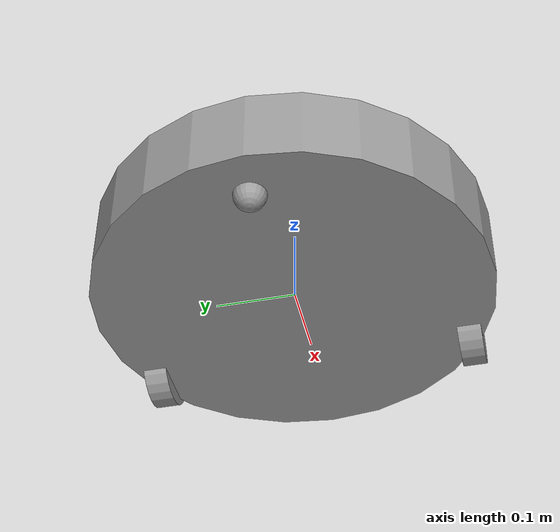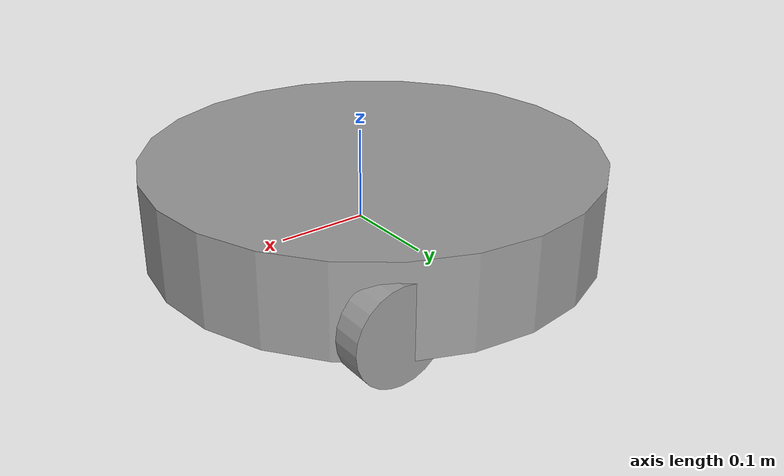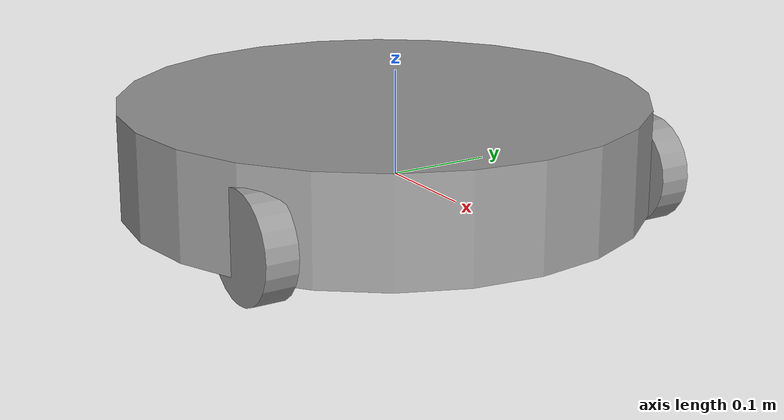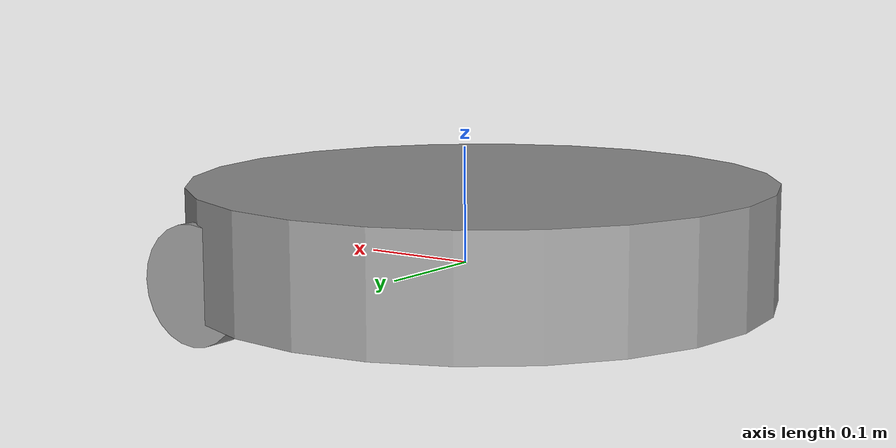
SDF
<?xml version='1.0'?>
<sdf version='1.7'>
  <model name='VacuumRobot'>
    <link name='link_0'>
      <inertial>
        <mass>0.604268</mass>
        <inertia>
          <ixx>0.0770601</ixx>
          <ixy>0</ixy>
          <ixz>0</ixz>
          <iyy>0.0770601</iyy>
          <iyz>0</iyz>
          <izz>0.144007</izz>
        </inertia>
        <pose>0 0 0 0 -0 0</pose>
      </inertial>
      <pose>-0.0175 -0.001845 0.0225 0 -0 0</pose>
      <gravity>1</gravity>
      <self_collide>0</self_collide>
      <kinematic>0</kinematic>
      <enable_wind>0</enable_wind>
      <visual name='visual'>
        <pose>0 0 0 0 -0 0</pose>
        <geometry>
          <cylinder>
            <radius>0.25</radius>
            <length>0.1</length>
          </cylinder>
        </geometry>
        <material>
          <lighting>1</lighting>
          <script>
            <uri>file://media/materials/scripts/gazebo.material</uri>
            <name>Gazebo/Grey</name>
          </script>
          <shader type='pixel'>
            <normal_map>__default__</normal_map>
          </shader>
          <ambient>0.3 0.3 0.3 1</ambient>
          <diffuse>0.7 0.7 0.7 1</diffuse>
          <specular>0.01 0.01 0.01 1</specular>
          <emissive>0 0 0 1</emissive>
        </material>
        <transparency>0</transparency>
        <cast_shadows>1</cast_shadows>
      </visual>
      <collision name='collision'>
        <laser_retro>0</laser_retro>
        <max_contacts>10</max_contacts>
        <pose>0 0 0 0 -0 0</pose>
        <geometry>
          <cylinder>
            <radius>0.25</radius>
            <length>0.1</length>
          </cylinder>
        </geometry>
        <surface>
          <friction>
            <ode>
              <mu>1</mu>
              <mu2>1</mu2>
              <fdir1>0 0 0</fdir1>
              <slip1>0</slip1>
              <slip2>0</slip2>
            </ode>
            <torsional>
              <coefficient>1</coefficient>
              <patch_radius>0</patch_radius>
              <surface_radius>0</surface_radius>
              <use_patch_radius>1</use_patch_radius>
              <ode>
                <slip>0</slip>
              </ode>
            </torsional>
          </friction>
          <bounce>
            <restitution_coefficient>0</restitution_coefficient>
            <threshold>1e+06</threshold>
          </bounce>
          <contact>
            <collide_without_contact>0</collide_without_contact>
            <collide_without_contact_bitmask>1</collide_without_contact_bitmask>
            <collide_bitmask>1</collide_bitmask>
            <ode>
              <soft_cfm>0</soft_cfm>
              <soft_erp>0.2</soft_erp>
              <kp>1e+13</kp>
              <kd>1</kd>
              <max_vel>0.01</max_vel>
              <min_depth>0</min_depth>
            </ode>
            <bullet>
              <split_impulse>1</split_impulse>
              <split_impulse_penetration_threshold>-0.01</split_impulse_penetration_threshold>
              <soft_cfm>0</soft_cfm>
              <soft_erp>0.2</soft_erp>
              <kp>1e+13</kp>
              <kd>1</kd>
            </bullet>
          </contact>
        </surface>
      </collision>
    </link>
    <link name='link_1_clone'>
      <inertial>
        <mass>1</mass>
        <inertia>
          <ixx>0.145833</ixx>
          <ixy>0</ixy>
          <ixz>0</ixz>
          <iyy>0.145833</iyy>
          <iyz>0</iyz>
          <izz>0.125</izz>
        </inertia>
        <pose>0 0 0 0 -0 0</pose>
      </inertial>
      <pose>0.1125 -0.206835 0.0025 1.5707 -0 0</pose>
      <gravity>1</gravity>
      <self_collide>0</self_collide>
      <kinematic>0</kinematic>
      <enable_wind>0</enable_wind>
      <visual name='visual'>
        <pose>0 0 0 0 -0 0</pose>
        <geometry>
          <cylinder>
            <radius>0.05</radius>
            <length>0.03</length>
          </cylinder>
        </geometry>
        <material>
          <lighting>1</lighting>
          <script>
            <uri>file://media/materials/scripts/gazebo.material</uri>
            <name>Gazebo/Grey</name>
          </script>
          <shader type='pixel'>
            <normal_map>__default__</normal_map>
          </shader>
          <ambient>0.3 0.3 0.3 1</ambient>
          <diffuse>0.7 0.7 0.7 1</diffuse>
          <specular>0.01 0.01 0.01 1</specular>
          <emissive>0 0 0 1</emissive>
        </material>
        <transparency>0</transparency>
        <cast_shadows>1</cast_shadows>
      </visual>
      <collision name='collision'>
        <laser_retro>0</laser_retro>
        <max_contacts>10</max_contacts>
        <pose>0 0 0 0 -0 0</pose>
        <geometry>
          <cylinder>
            <radius>0.05</radius>
            <length>0.03</length>
          </cylinder>
        </geometry>
        <surface>
          <friction>
            <ode>
              <mu>1</mu>
              <mu2>1</mu2>
              <fdir1>0 0 0</fdir1>
              <slip1>0</slip1>
              <slip2>0</slip2>
            </ode>
            <torsional>
              <coefficient>1</coefficient>
              <patch_radius>0</patch_radius>
              <surface_radius>0</surface_radius>
              <use_patch_radius>1</use_patch_radius>
              <ode>
                <slip>0</slip>
              </ode>
            </torsional>
          </friction>
          <bounce>
            <restitution_coefficient>0</restitution_coefficient>
            <threshold>1e+06</threshold>
          </bounce>
          <contact>
            <collide_without_contact>0</collide_without_contact>
            <collide_without_contact_bitmask>1</collide_without_contact_bitmask>
            <collide_bitmask>1</collide_bitmask>
            <ode>
              <soft_cfm>0</soft_cfm>
              <soft_erp>0.2</soft_erp>
              <kp>1e+13</kp>
              <kd>1</kd>
              <max_vel>0.01</max_vel>
              <min_depth>0</min_depth>
            </ode>
            <bullet>
              <split_impulse>1</split_impulse>
              <split_impulse_penetration_threshold>-0.01</split_impulse_penetration_threshold>
              <soft_cfm>0</soft_cfm>
              <soft_erp>0.2</soft_erp>
              <kp>1e+13</kp>
              <kd>1</kd>
            </bullet>
          </contact>
        </surface>
      </collision>
    </link>
    <link name='link_1_clone_clone'>
      <inertial>
        <mass>1</mass>
        <inertia>
          <ixx>0.145833</ixx>
          <ixy>0</ixy>
          <ixz>0</ixz>
          <iyy>0.145833</iyy>
          <iyz>0</iyz>
          <izz>0.125</izz>
        </inertia>
        <pose>0 0 0 0 -0 0</pose>
      </inertial>
      <pose>0.1125 0.203155 0.0025 1.5707 -0 0</pose>
      <gravity>1</gravity>
      <self_collide>0</self_collide>
      <kinematic>0</kinematic>
      <enable_wind>0</enable_wind>
      <visual name='visual'>
        <pose>0 0 0 0 -0 0</pose>
        <geometry>
          <cylinder>
            <radius>0.05</radius>
            <length>0.03</length>
          </cylinder>
        </geometry>
        <material>
          <lighting>1</lighting>
          <script>
            <uri>file://media/materials/scripts/gazebo.material</uri>
            <name>Gazebo/Grey</name>
          </script>
          <shader type='pixel'>
            <normal_map>__default__</normal_map>
          </shader>
          <ambient>0.3 0.3 0.3 1</ambient>
          <diffuse>0.7 0.7 0.7 1</diffuse>
          <specular>0.01 0.01 0.01 1</specular>
          <emissive>0 0 0 1</emissive>
        </material>
        <transparency>0</transparency>
        <cast_shadows>1</cast_shadows>
      </visual>
      <collision name='collision'>
        <laser_retro>0</laser_retro>
        <max_contacts>10</max_contacts>
        <pose>0 0 0 0 -0 0</pose>
        <geometry>
          <cylinder>
            <radius>0.05</radius>
            <length>0.03</length>
          </cylinder>
        </geometry>
        <surface>
          <friction>
            <ode>
              <mu>1</mu>
              <mu2>1</mu2>
              <fdir1>0 0 0</fdir1>
              <slip1>0</slip1>
              <slip2>0</slip2>
            </ode>
            <torsional>
              <coefficient>1</coefficient>
              <patch_radius>0</patch_radius>
              <surface_radius>0</surface_radius>
              <use_patch_radius>1</use_patch_radius>
              <ode>
                <slip>0</slip>
              </ode>
            </torsional>
          </friction>
          <bounce>
            <restitution_coefficient>0</restitution_coefficient>
            <threshold>1e+06</threshold>
          </bounce>
          <contact>
            <collide_without_contact>0</collide_without_contact>
            <collide_without_contact_bitmask>1</collide_without_contact_bitmask>
            <collide_bitmask>1</collide_bitmask>
            <ode>
              <soft_cfm>0</soft_cfm>
              <soft_erp>0.2</soft_erp>
              <kp>1e+13</kp>
              <kd>1</kd>
              <max_vel>0.01</max_vel>
              <min_depth>0</min_depth>
            </ode>
            <bullet>
              <split_impulse>1</split_impulse>
              <split_impulse_penetration_threshold>-0.01</split_impulse_penetration_threshold>
              <soft_cfm>0</soft_cfm>
              <soft_erp>0.2</soft_erp>
              <kp>1e+13</kp>
              <kd>1</kd>
            </bullet>
          </contact>
        </surface>
      </collision>
    </link>
    <link name='link_2'>
      <inertial>
        <mass>1</mass>
        <inertia>
          <ixx>0.1</ixx>
          <ixy>0</ixy>
          <ixz>0</ixz>
          <iyy>0.1</iyy>
          <iyz>0</iyz>
          <izz>0.1</izz>
        </inertia>
        <pose>0 0 0 0 -0 0</pose>
      </inertial>
      <pose>-0.2075 0.005525 -0.0275 0 -0 0</pose>
      <gravity>1</gravity>
      <self_collide>0</self_collide>
      <kinematic>0</kinematic>
      <enable_wind>0</enable_wind>
      <visual name='visual'>
        <pose>0 0 0 0 -0 0</pose>
        <geometry>
          <sphere>
            <radius>0.02</radius>
          </sphere>
        </geometry>
        <material>
          <lighting>1</lighting>
          <script>
            <uri>file://media/materials/scripts/gazebo.material</uri>
            <name>Gazebo/Grey</name>
          </script>
          <shader type='pixel'>
            <normal_map>__default__</normal_map>
          </shader>
          <ambient>0.3 0.3 0.3 1</ambient>
          <diffuse>0.7 0.7 0.7 1</diffuse>
          <specular>0.01 0.01 0.01 1</specular>
          <emissive>0 0 0 1</emissive>
        </material>
        <transparency>0</transparency>
        <cast_shadows>1</cast_shadows>
      </visual>
      <collision name='collision'>
        <laser_retro>0</laser_retro>
        <max_contacts>10</max_contacts>
        <pose>0 0 0 0 -0 0</pose>
        <geometry>
          <sphere>
            <radius>0.02</radius>
          </sphere>
        </geometry>
        <surface>
          <friction>
            <ode>
              <mu>1</mu>
              <mu2>1</mu2>
              <fdir1>0 0 0</fdir1>
              <slip1>0</slip1>
              <slip2>0</slip2>
            </ode>
            <torsional>
              <coefficient>1</coefficient>
              <patch_radius>0</patch_radius>
              <surface_radius>0</surface_radius>
              <use_patch_radius>1</use_patch_radius>
              <ode>
                <slip>0</slip>
              </ode>
            </torsional>
          </friction>
          <bounce>
            <restitution_coefficient>0</restitution_coefficient>
            <threshold>1e+06</threshold>
          </bounce>
          <contact>
            <collide_without_contact>0</collide_without_contact>
            <collide_without_contact_bitmask>1</collide_without_contact_bitmask>
            <collide_bitmask>1</collide_bitmask>
            <ode>
              <soft_cfm>0</soft_cfm>
              <soft_erp>0.2</soft_erp>
              <kp>1e+13</kp>
              <kd>1</kd>
              <max_vel>0.01</max_vel>
              <min_depth>0</min_depth>
            </ode>
            <bullet>
              <split_impulse>1</split_impulse>
              <split_impulse_penetration_threshold>-0.01</split_impulse_penetration_threshold>
              <soft_cfm>0</soft_cfm>
              <soft_erp>0.2</soft_erp>
              <kp>1e+13</kp>
              <kd>1</kd>
            </bullet>
          </contact>
        </surface>
      </collision>
    </link>
    <joint name='link_0_JOINT_1' type='revolute'>
      <parent>link_0</parent>
      <child>link_1_clone</child>
      <pose>0 0 0 0 -0 0</pose>
      <axis>
        <xyz>0 0 1</xyz>
        <limit>
          <lower>-1.79769e+308</lower>
          <upper>1.79769e+308</upper>
          <effort>-1</effort>
          <velocity>-1</velocity>
        </limit>
        <dynamics>
          <spring_reference>0</spring_reference>
          <spring_stiffness>0</spring_stiffness>
          <damping>0</damping>
        </dynamics>
      </axis>
      <physics>
        <ode>
          <limit>
            <cfm>0</cfm>
            <erp>0.2</erp>
          </limit>
          <suspension>
            <cfm>0</cfm>
            <erp>0.2</erp>
          </suspension>
        </ode>
      </physics>
    </joint>
    <joint name='link_0_JOINT_2' type='revolute'>
      <parent>link_0</parent>
      <child>link_1_clone_clone</child>
      <pose>0 0 0 0 -0 0</pose>
      <axis>
        <xyz>0 0 1</xyz>
        <limit>
          <lower>-1.79769e+308</lower>
          <upper>1.79769e+308</upper>
          <effort>-1</effort>
          <velocity>-1</velocity>
        </limit>
        <dynamics>
          <spring_reference>0</spring_reference>
          <spring_stiffness>0</spring_stiffness>
          <damping>0</damping>
        </dynamics>
      </axis>
      <physics>
        <ode>
          <limit>
            <cfm>0</cfm>
            <erp>0.2</erp>
          </limit>
          <suspension>
            <cfm>0</cfm>
            <erp>0.2</erp>
          </suspension>
        </ode>
      </physics>
    </joint>
    <joint name='link_0_JOINT_3' type='ball'>
      <parent>link_0</parent>
      <child>link_2</child>
      <pose>0 0 0 0 -0 0</pose>
      <physics>
        <ode>
          <limit>
            <cfm>0</cfm>
            <erp>0.2</erp>
          </limit>
          <suspension>
            <cfm>0</cfm>
            <erp>0.2</erp>
          </suspension>
        </ode>
      </physics>
    </joint>
    <static>0</static>
    <allow_auto_disable>1</allow_auto_disable>
  </model>
</sdf>
